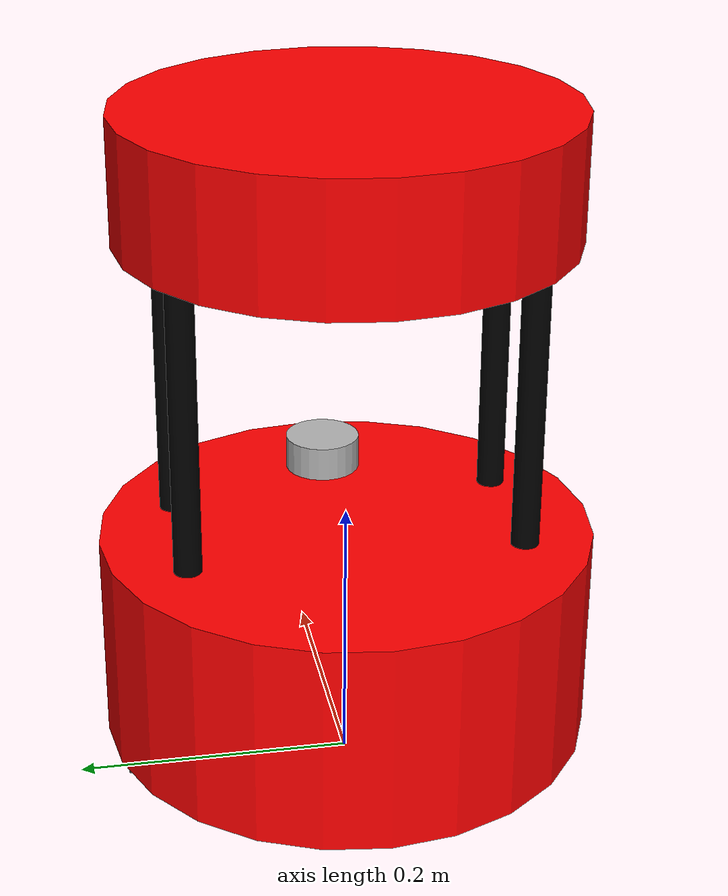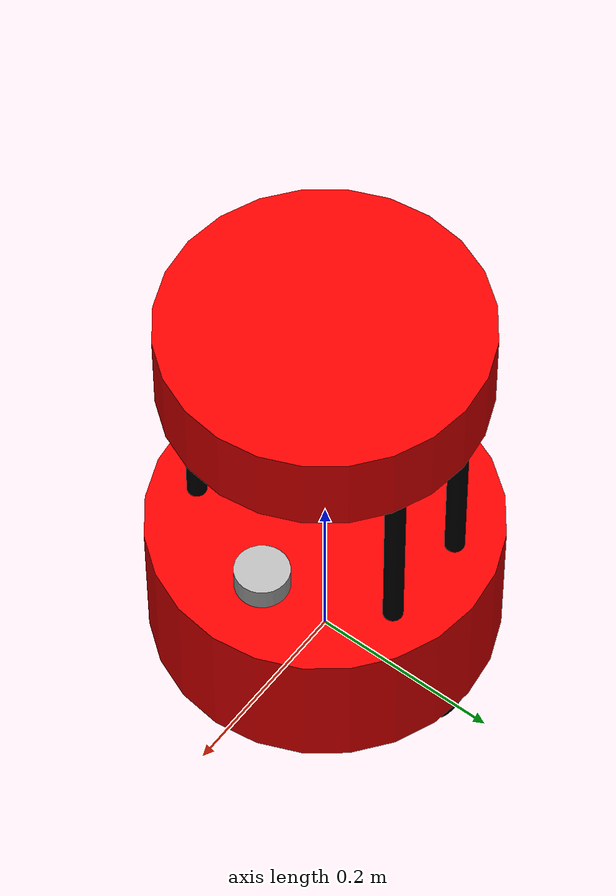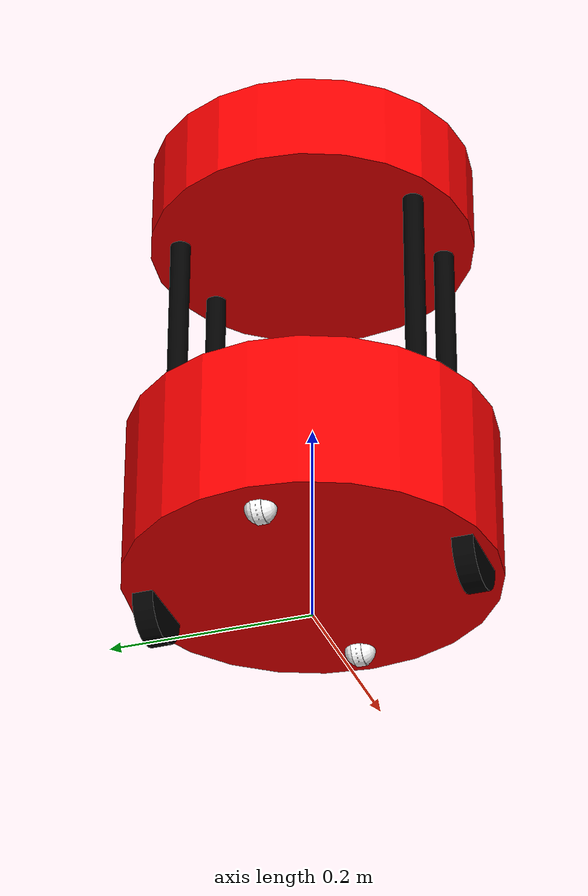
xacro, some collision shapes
<?xml version="1.0"?>
<robot xmlns:xacro="http://www.ros.org/wiki/xacro" name="barista_robot">

<xacro:arg name="include_laser" default="true"/>
<xacro:arg name="robot_name" default="rick"/>

<xacro:include filename="$(find barista_robot_description)/xacro/drive_wheel.xacro" />
<xacro:include filename="$(find barista_robot_description)/xacro/caster_wheel.xacro" />
<xacro:include filename="$(find barista_robot_description)/xacro/standoff_rod.xacro" />
<xacro:include filename="$(find barista_robot_description)/xacro/cup_holder_tray.xacro" />
<xacro:include filename="$(find barista_robot_description)/xacro/laser_scanner.xacro" />
<xacro:include filename="$(find barista_robot_description)/xacro/barista_robot.gazebo.xacro" />

<xacro:property name="robot_name" value="$(arg robot_name)"/>
<xacro:property name="body_width" value="0.155"/>
<xacro:property name="body_radius" value="0.178"/>

<!-- Materials -->
  <material name="red">
      <color rgba="1.0 0.0 0.0 1"/>
  </material>

  <material name="blue">
      <color rgba="0.0 0.0 1.0 1"/>
  </material>

  <material name="black">
      <color rgba="0.0 0.0 0.0 1"/>
  </material>

  <material name="white">
      <color rgba="1.0 1.0 1.0 1"/>
  </material>

  <link name="base_link">
  </link>

<!-- Body -->
   <link name="chassis">
    <visual>
        <origin rpy="0 0 0" xyz="0 0 0"/>
        <geometry>
          <cylinder length="${body_width}" radius="${body_radius}"/>
        </geometry>
        <xacro:if value="${robot_name == 'rick'}">
            <material name="red"/>
        </xacro:if>
        <xacro:unless value="${robot_name == 'rick'}">
            <material name="blue"/>
        </xacro:unless>
    </visual>

    <collision>
      <geometry>
        <cylinder length="${body_width}" radius="${body_radius}"/>
      </geometry>
    </collision>

    <inertial>
      <mass value="0.5"/>
      <origin rpy="0 0 0" xyz="0 0 0"/>
      <inertia ixx="0.004962" ixy="0.0" ixz="0.0" iyy="0.004962" iyz="0.0" izz="0.007921"/>
    </inertial>
  </link>

  <joint name="base_link_joint" type="fixed">
    <origin rpy="0 0 0" xyz="0 0 0.1127" />
    <parent link="base_link" />
    <child link="chassis" />
  </joint>

<!-- Drive Wheels -->
<xacro:drive_wheel wheel_name="left" material="black" parent="chassis" x="0" y="0.155" z="-0.0775" />
<xacro:drive_wheel wheel_name="right" material="black" parent="chassis" x="0" y="-0.155" z="-0.0775" />
<!-- Caster Wheel -->
<xacro:caster_wheel pos="back" material="white" parent="chassis" x="-0.140" y="0" z="-0.0775" />
<xacro:caster_wheel pos="front" material="white" parent="chassis" x="0.140" y="0" z="-0.0775" />
<!-- Stand-off Rods -->
<xacro:standoff_rod number="1" material="black" parent="chassis" x="0.05" y="-0.12" z="0.1875" length="0.220" radius="0.01" />
<xacro:standoff_rod number="2" material="black" parent="chassis" x="-0.05" y="-0.12" z="0.1875" length="0.220" radius="0.01"  />
<xacro:standoff_rod number="3" material="black" parent="chassis" x="0.05" y="0.12" z="0.1875" length="0.220" radius="0.01" />
<xacro:standoff_rod number="4" material="black" parent="chassis" x="-0.05" y="0.12" z="0.1875" length="0.220" radius="0.01" />
<!-- Cup Holder tray -->
<xacro:cup_holder_tray parent="chassis" x="0" y="0" z="0.3425" robot_name="$(arg robot_name)"/>
<!-- Laser scan -->
<xacro:if value="$(arg include_laser)">
  <xacro:laser_scanner parent="chassis" x="0.1" y="0" z="0.0775" robot_name="$(arg robot_name)" />
</xacro:if>

<!-- PLUGINS -->
<xacro:barista_gazebo robot_name="$(arg robot_name)" />

</robot>

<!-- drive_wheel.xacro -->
<robot xmlns:xacro="http://www.ros.org/wiki/xacro">

<xacro:property name="wheel_width" value="0.0206"/>
<xacro:property name="wheel_radius" value="0.0352"/>

<!-- Wheel Macro -->
  <xacro:macro name="drive_wheel" params="wheel_name material parent x y z">
    <link name="${wheel_name}">
        <visual>
            <origin rpy="0 1.5707 1.5707" xyz="0 0 0"/>
            <geometry>
              <cylinder length="${wheel_width}" radius="${wheel_radius}"/>
            </geometry>
            <material name="${material}"/>
        </visual>

        <collision>
            <origin rpy="0 1.5707 1.5707" xyz="0 0 0"/>
            <geometry>
            <cylinder length="${wheel_width}" radius="${wheel_radius}"/>
            </geometry>
        </collision>

        <inertial>
            <origin rpy="0 1.5707 1.5707" xyz="0 0 0"/>
            <mass value="0.1"/>
            <inertia ixx="3.451233e-05" ixy="0" ixz="0" iyy="3.451233e-05" iyz="0" izz="6.1952e-05"/>
        </inertial>
    </link>

  <gazebo reference="${wheel_name}">
    <collision>
        <surface>
        <friction>
            <ode>
            <mu>10.0</mu>
            <mu2>10.0</mu2>
            </ode>
        </friction>
        <contact>
            <ode>
            <kp>10000000.0</kp>
            <kd>10000000.0</kd>
            </ode>
        </contact>
        </surface>
    </collision>
  </gazebo>

    <joint name="joint_${wheel_name}_wheel" type="continuous">
        <origin rpy="0 0 0" xyz="${x} ${y} ${z}"/>
        <child link="${wheel_name}"/>
        <parent link="${parent}"/>
        <axis rpy="0 0 0" xyz="0 1 0"/>
        <limit effort="10000" velocity="1000"/>
        <joint_properties damping="1.0" friction="1.0"/>
    </joint>

  </xacro:macro>

</robot>

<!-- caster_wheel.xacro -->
<robot xmlns:xacro="http://www.ros.org/wiki/xacro">

<xacro:property name="caster_wheel_height" value="0.01"/>
<xacro:property name="caster_wheel_radius" value="0.015"/>

<!-- Caster wheel macro-->
<xacro:macro name="caster_wheel" params=" pos material parent x y z">

  <link name="${pos}_yaw_link">
    <visual>
        <origin rpy="0 1.5707 1.5707" xyz="0 0 0"/>
        <geometry>
          <cylinder length="${caster_wheel_height}" radius="${caster_wheel_radius}"/>
        </geometry>
        <material name="${material}"/>
      </visual>

      <collision>
        <origin rpy="0 1.5707 1.5707" xyz="0 0 0"/>
        <geometry>
          <cylinder length="${caster_wheel_height}" radius="${caster_wheel_radius}"/>
        </geometry>
      </collision>

      <inertial>
          <origin rpy="0 1.5707 1.5707" xyz="0 0 0"/>
          <mass value="0.001"/>
          <inertia ixx="6.4583e-08" ixy="0" ixz="0" iyy="6.4583e-08" iyz="0" izz="1.125e-07"/>
      </inertial>
  </link>

  <joint name="${pos}_yaw_joint" type="continuous">
    <origin rpy="0 0 0" xyz="${x} ${y} ${z}" />
    <parent link="${parent}"/>
    <child link="${pos}_yaw_link" />
    <axis xyz="0 0 1" />
    <limit effort="1000.0" velocity="100.0" />
    <dynamics damping="0.0" friction="0.1"/>
  </joint>

  <link name="${pos}_roll_link">
      <visual>
        <origin rpy="0 1.5707 1.5707" xyz="0 0 0"/>
        <geometry>
          <cylinder length="${caster_wheel_height}" radius="${caster_wheel_radius}"/>
        </geometry>
        <material name="${material}"/>
      </visual>

      <collision>
        <origin rpy="0 1.5707 1.5707" xyz="0 0 0"/>
        <geometry>
          <cylinder length="${caster_wheel_height}" radius="${caster_wheel_radius}"/>
        </geometry>
      </collision>

      <inertial>
          <origin rpy="0 1.5707 1.5707" xyz="0 0 0"/>
          <mass value="0.001"/>
          <inertia ixx="6.4583e-08" ixy="0" ixz="0" iyy="6.4583e-08" iyz="0" izz="1.125e-07"/>
      </inertial>
  </link>

  <joint name="${pos}_roll_joint" type="continuous">
    <origin rpy="0 0 0" xyz="0 0 0" />
    <parent link="${pos}_yaw_link" />
    <child link="${pos}_roll_link" />
    <axis xyz="1 0 0" />
    <limit effort="1000.0" velocity="100.0" />
    <dynamics damping="0.0" friction="0.1"/>
  </joint>

  <link name="${pos}_pitch_link">
    <visual>
      <origin rpy="0 1.5707 1.5707" xyz="0 0 0"/>
      <geometry>
        <sphere radius="${caster_wheel_radius}"/>
      </geometry>
      <material name="${material}"/>
    </visual>

    <collision>
      <origin rpy="0 1.5707 1.5707" xyz="0 0 0"/>
      <geometry>
        <sphere radius="${caster_wheel_radius}"/>
      </geometry>
    </collision>

    <inertial>
        <origin rpy="0 1.5707 1.5707" xyz="0 0 0"/>
        <mass value="0.015"/>
        <inertia ixx="1.35e-06" ixy="0" ixz="0" iyy="1.35e-06" iyz="0" izz="1.35e-06"/>
    </inertial>
  </link>

  <gazebo reference="${pos}_pitch_link">
    <collision>
        <surface>
        <friction>
            <ode>
            <mu>0.5</mu>
            <mu2>0.5</mu2>
            </ode>
        </friction>
        <contact>
            <ode>
            <kp>10000000.0</kp>
            <kd>10000000.0</kd>
            </ode>
        </contact>
        </surface>
    </collision>
  </gazebo>

   <joint name="${pos}_pitch_joint" type="continuous">
        <origin rpy="0 0 0" xyz="0 0 0" />
        <parent link="${pos}_roll_link" />
        <child link="${pos}_pitch_link" />
        <axis xyz="0 1 0" />
        <limit effort="1000.0" velocity="100.0" />
        <dynamics damping="0.0" friction="0.1"/>
   </joint>

  </xacro:macro>

</robot>

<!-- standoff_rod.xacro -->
<robot xmlns:xacro="http://www.ros.org/wiki/xacro">

<!-- stand off rod Macro -->
  <xacro:macro name="standoff_rod" params="number material parent x y z length radius">
    <link name="${number}_link">
        <visual>
            <origin rpy="0 0 0" xyz="0 0 0"/>
            <geometry>
                <cylinder length="${length}" radius="${radius}"/>
            </geometry>
            <material name="${material}"/>
        </visual>

        <collision>
            <origin rpy="0 0 0" xyz="0 0 0"/>
            <geometry>
            <cylinder length="${length}" radius="${radius}"/>
            </geometry>
        </collision>

        <inertial>
            <mass value="0.05"/>
            <origin rpy="0 0 0" xyz="0 0 0"/>
            <inertia ixx="0.0002029" ixy="0" ixz="0" iyy="0.0002029" iyz="0" izz="0.0000025"/>
        </inertial>
    </link>

    <joint name="${number}_joint" type="fixed">
        <origin rpy="0 0 0" xyz="${x} ${y} ${z}" />
        <parent link="${parent}" />
        <child link="${number}_link" />
    </joint>

  </xacro:macro>

</robot>

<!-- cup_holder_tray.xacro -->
<robot xmlns:xacro="http://www.ros.org/wiki/xacro">

<xacro:property name="tray_height" value="0.090"/>
<xacro:property name="tray_radius" value="0.16"/>

<!-- Cup Holder Tray Macro -->
  <xacro:macro name="cup_holder_tray" params="parent x y z robot_name">
    <link name="cup_holder_tray">
    <visual>
        <origin rpy="0 0 0" xyz="0 0 0"/>
        <geometry>
          <cylinder length="${tray_height}" radius="${tray_radius}"/>
        </geometry>
        <xacro:if value="${robot_name == 'rick'}">
            <material name="red"/>
        </xacro:if>
        <xacro:unless value="${robot_name == 'rick'}">
            <material name="blue"/>
        </xacro:unless>
    </visual>

    <collision>
      <geometry>
        <cylinder length="${tray_height}" radius="${tray_radius}"/>
      </geometry>
    </collision>

    <inertial>
      <mass value="0.4"/>
      <origin rpy="0 0 0" xyz="0 0 0"/>
      <inertia ixx="0.00283" ixy="0" ixz="0" iyy="0.00283" iyz="0" izz="0.00512"/>
    </inertial>

   </link>

   <joint name="cup_holder_tray_joint" type="fixed">
        <origin rpy="0 0 0" xyz="${x} ${y} ${z}" />
        <parent link="${parent}" />
        <child link="cup_holder_tray" />
  </joint>

  </xacro:macro>

</robot>

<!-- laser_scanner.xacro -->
<robot xmlns:xacro="http://www.ros.org/wiki/xacro">

  <xacro:macro name="laser_scanner" params="parent x y z robot_name">

    <link name="laser_scan_link">
      <visual>
        <origin xyz="0 0 0" rpy="0 0 0"/>
        <geometry>
          <mesh filename="package://barista_robot_description/meshes/slamtec_rplidar_s1.dae"/>
        </geometry>
      </visual>

      <collision>
        <origin xyz="0 0 0" rpy="0 0 0"/>
        <geometry>
          <cylinder radius="0.02775" length="0.051"/>
        </geometry>
      </collision>

      <inertial>
        <mass value="0.105"/>
        <origin rpy="0 0 0" xyz="0 0 0"/>
        <inertia
            ixx="4.297289e-05" ixy="0.0" ixz="0.0"
            iyy="4.297289e-05" iyz="0.0"
            izz="4.042828e-05"/>
      </inertial>
    </link>

    <joint name="laser_scan_joint" type="fixed">
      <parent link="${parent}"/>
      <child link="laser_scan_link"/>
      <origin xyz="${x} ${y} ${z}" rpy="0 0 0"/>
    </joint>

    <gazebo reference="laser_scan_link">
      <sensor name="lidar" type="gpu_lidar">
        <pose>0 0 0 0 0 0</pose>
        <always_on>true</always_on>
        <visualize>true</visualize>
        <update_rate>10</update_rate>
        <ray>
          <scan>
            <horizontal>
              <samples>360</samples>
              <resolution>1</resolution>
              <min_angle>-3.14159</min_angle>
              <max_angle>3.14159</max_angle>
            </horizontal>
          </scan>
          <range>
            <min>0.12</min>
            <max>12.0</max>
            <resolution>0.01</resolution>
          </range>
        </ray>
        <topic>${robot_name}/scan</topic>
        <gz_frame_id>${robot_name}/laser_scan_link</gz_frame_id>
      </sensor>
    </gazebo>

    <link name="laser_scan_frame">
    </link>

    <joint name="laser_scan_frame_joint" type="fixed">
        <origin rpy="0 0 0" xyz="0 0 0"/>
        <parent link="laser_scan_link"/>
        <child link="laser_scan_frame"/>
        <axis xyz="0 0 0"/>
    </joint>

  </xacro:macro>
</robot>
